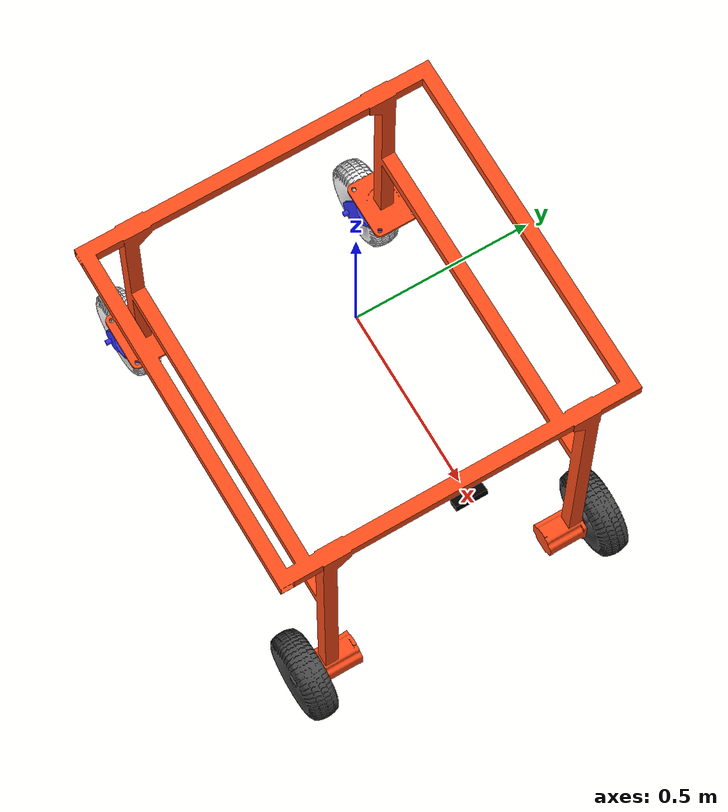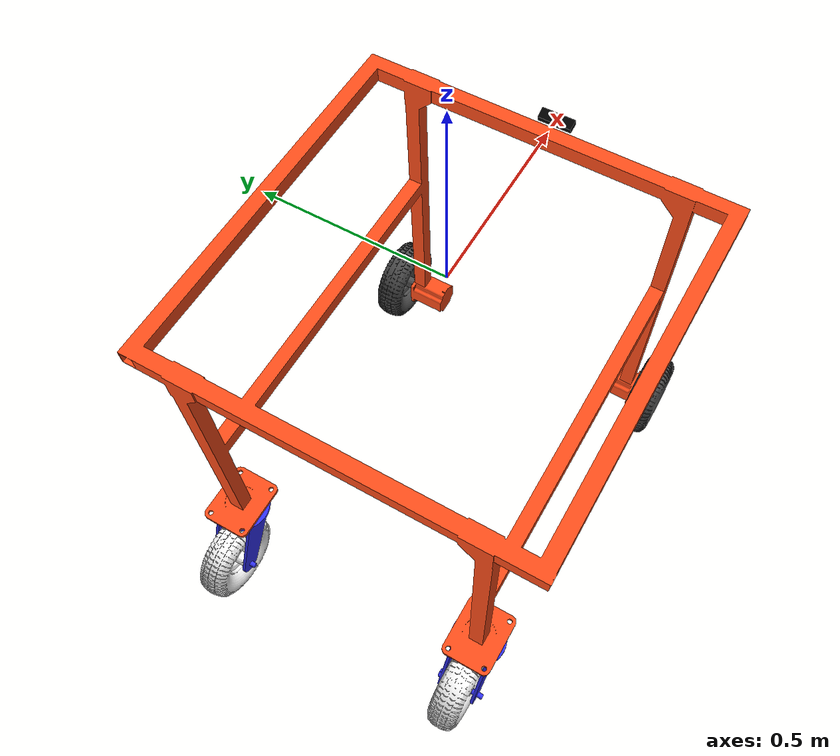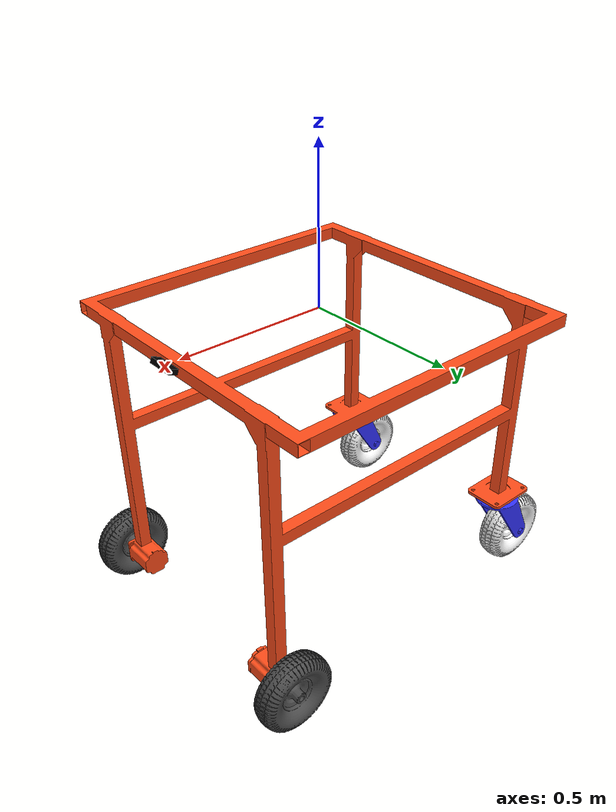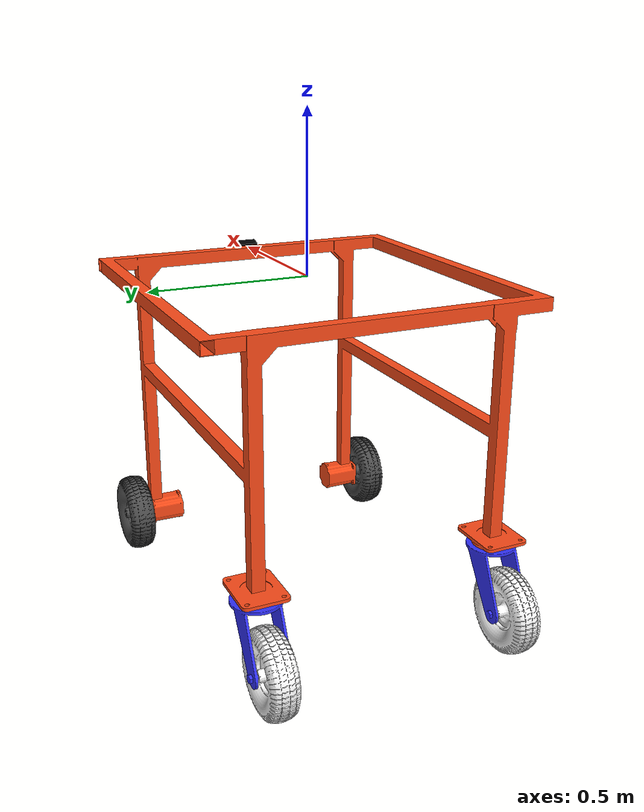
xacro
<?xml version="1.0"?>
<robot xmlns:xacro="http://www.ros.org/wiki/xacro"  name="agri_robot">

  <xacro:include filename="robot_core.xacro"/>
  <xacro:include filename="ros2_control.xacro"/>
  <xacro:include filename="camera_control.xacro"/>
  <xacro:include filename="imu_sensor.xacro"/>

</robot>

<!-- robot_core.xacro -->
<robot xmlns:xacro="http://www.ros.org/wiki/xacro" >

  <material name="black">
    <color rgba="0 0 0 1" />
  </material>

  <material name="gray">
    <color rgba="0.3 0.3 0.3 1" />
  </material>

  <material name="white">
    <color rgba="1 1 1 1" />
  </material>

  <material name="orange">
    <color rgba="1 0.3 0.1 1" />
  </material>

  <material name="blue">
    <color rgba="0.2 0.2 1 1" />
  </material>

  <!--BASE LINK-->

  <link name="base_link">
    <inertial>
      <origin
        xyz="0.046234 -0.00096018 -0.47057"
        rpy="0 0 0" />
      <mass
        value="11.59" />
      <inertia
        ixx="2.7487"
        ixy="0.000"
        ixz="0.21609"
        iyy="7.7539"
        iyz="0.000"
        izz="9.135" />
    </inertial>
    <visual>
      <origin
        xyz="0 0 0"
        rpy="0 0 0" />
      <geometry>
        <mesh
          filename="package://agri_robot_description/meshes/base_link.STL" />
      </geometry>
      <material name="orange"/>
    </visual>
    <collision>
      <origin
        xyz="0 0 0"
        rpy="0 0 0" />
      <geometry>
        <mesh
          filename="package://agri_robot_description/meshes/base_link.STL" />
      </geometry>
    </collision>
  </link>

  <gazebo reference="base_link">
    <material>Gazebo/Orange</material>
  </gazebo>

  <!--LEFT WHEEL LINK-->

  <link
    name="Left_wheel">
    <inertial>
      <origin
        xyz="0.000061067 -0.0010099 0.045157"
        rpy="0 0 0" />
      <mass
        value="1.0" />
      <inertia
        ixx="0.037507"
        ixy="0.00024657"
        ixz="-0.00042617"
        iyy="0.036946"
        iyz="0.0016924"
        izz="0.065317" />
    </inertial>
    <visual>
      <origin
        xyz="0 0 0"
        rpy="0 0 0" />
      <geometry>
        <mesh
          filename="package://agri_robot_description/meshes/Left_wheel.STL" />
      </geometry>
      <material name="gray"/>
    </visual>
    <collision>
      <origin
        xyz="0 0 0"
        rpy="0 0 0" />
      <geometry>
        <mesh
          filename="package://agri_robot_description/meshes/Left_wheel.STL" />
      </geometry>
    </collision>
  </link>

  <gazebo reference="Left_wheel">
    <material>Gazebo/Gray</material>
    <mu1 value="0.4"/>
    <mu2 value="0.4"/>
  </gazebo>

  <joint
    name="Left_wheel_joint"
    type="continuous">
    <origin
      xyz="0.50046 0.40877 -0.92806"
      rpy="-1.5708 0 0" />
    <parent
      link="base_link" />
    <child
      link="Left_wheel" />
    <axis
      xyz="0 0 1" />
    <limit
      effort="100"
      velocity="100" />
    <dynamics
      damping="0.1"
      friction="0.1" />
  </joint>

  <!--RIGHT WHEEL LINK-->

  <link
    name="Right_wheel">
    <inertial>
      <origin
        xyz="-0.000061067 -0.0010099 0.045157"
        rpy="0 0 0" />
      <mass
        value="1.0" />
      <inertia
        ixx="0.037507"
        ixy="0.00024657"
        ixz="-0.00042617"
        iyy="0.036946"
        iyz="0.0016924"
        izz="0.065317" />
    </inertial>
    <visual>
      <origin
        xyz="0 0 0"
        rpy="0 0 0" />
      <geometry>
        <mesh
          filename="package://agri_robot_description/meshes/Right_wheel.STL" />
      </geometry>
      <material name="gray"/>
    </visual>
    <collision>
      <origin
        xyz="0 0 0"
        rpy="0 0 0" />
      <geometry>
        <mesh
          filename="package://agri_robot_description/meshes/Right_wheel.STL" />
      </geometry>
    </collision>
  </link>

  <gazebo reference="Right_wheel">
    <material>Gazebo/Gray</material>
    <mu1 value="0.4"/>
    <mu2 value="0.4"/>
  </gazebo>

  <joint
    name="Right_wheel_joint"
    type="continuous">
    <origin
      xyz="0.50046 -0.4997 -0.92806"
      rpy="1.5708 0 3.1416" />
    <parent
      link="base_link" />
    <child
      link="Right_wheel" />
    <axis
      xyz="0 0 1" />
    <limit
      effort="100"
      velocity="100" />
    <dynamics
      damping="0.1"
      friction="0.1" />
  </joint>

  <!--BASE CASTER LEFT LINK-->

  <link
    name="Base_caster_left">
    <inertial>
      <origin
        xyz="-0.032832 -0.00018128 0.056902"
        rpy="0 0 0" />
      <mass
        value="0.45" />
      <inertia
        ixx="0.025915"
        ixy="0.00044677"
        ixz="0.0087669"
        iyy="0.025098"
        iyz="0.0047946"
        izz="0.018083" />
    </inertial>
    <visual>
      <origin
        xyz="0 0 0"
        rpy="0 0 0" />
      <geometry>
        <mesh
          filename="package://agri_robot_description/meshes/Base_caster_left.STL" />
      </geometry>
      <material name="blue"/>
    </visual>
    <collision>
      <origin
        xyz="0 0 0"
        rpy="0 0 0" />
      <geometry>
        <mesh
          filename="package://agri_robot_description/meshes/Base_caster_left.STL" />
      </geometry>
    </collision>
  </link>

  <gazebo reference="Base_caster_left">
    <material>Gazebo/Blue</material>
    <mu1 value="0.2"/>
    <mu2 value="0.2"/>
  </gazebo>

  <joint
    name="Base_caster_left_joint"
    type="continuous">
    <origin
      xyz="-0.5 0.38 -0.758"
      rpy="-3.1416 0 0" />
    <parent
      link="base_link" />
    <child
      link="Base_caster_left" />
    <axis
      xyz="0 0 1" />
    <limit
      effort="100"
      velocity="100" />
    <dynamics
      damping="0.1"
      friction="0.1" />
  </joint>

  <!--CASTER WHEEL LEFT LINK-->

  <link
    name="Caster_wheel_left">
    <inertial>
      <origin
        xyz="-0.00030285 0.0010085 0.0076161"
        rpy="0 0 0" />
      <mass
        value="1.0" />
      <inertia
        ixx="0.037507"
        ixy="0.00024657"
        ixz="-0.00042617"
        iyy="0.036946"
        iyz="0.0016924"
        izz="0.065317" />
    </inertial>
    <visual>
      <origin
        xyz="0 0 0"
        rpy="0 0 0" />
      <geometry>
        <mesh
          filename="package://agri_robot_description/meshes/Caster_wheel_left.STL" />
      </geometry>
      <material name="white"/>
    </visual>
    <collision>
      <origin
        xyz="0 0 0"
        rpy="0 0 0" />
      <geometry>
        <mesh
          filename="package://agri_robot_description/meshes/Caster_wheel_left.STL" />
      </geometry>
    </collision>
  </link>

  <gazebo reference="Caster_wheel_left">
    <material>Gazebo/White</material>
    <mu1 value="0.4"/>
    <mu2 value="0.4"/>
  </gazebo>

  <joint
    name="Caster_wheel_left_joint"
    type="continuous">
    <origin
      xyz="-0.09675 0.0072514 0.17"
      rpy="1.5708 0 0" />
    <parent
      link="Base_caster_left" />
    <child
      link="Caster_wheel_left" />
    <axis
      xyz="0 0 1" />
    <limit
      effort="100"
      velocity="100" />
    <dynamics
      damping="0.1"
      friction="0.1" />
  </joint>

  <!--BASE CASTER RIGHT LINK-->

  <link
    name="Base_caster_right">
    <inertial>
      <origin
        xyz="-0.032832 -0.00018128 0.056902"
        rpy="0 0 0" />
      <mass
        value="0.45" />
      <inertia
        ixx="0.025915"
        ixy="0.00044677"
        ixz="0.0087669"
        iyy="0.025098"
        iyz="0.0047946"
        izz="0.018083" />
    </inertial>
    <visual>
      <origin
        xyz="0 0 0"
        rpy="0 0 0" />
      <geometry>
        <mesh
          filename="package://agri_robot_description/meshes/Base_caster_right.STL" />
      </geometry>
      <material name="blue"/>
    </visual>
    <collision>
      <origin
        xyz="0 0 0"
        rpy="0 0 0" />
      <geometry>
        <mesh
          filename="package://agri_robot_description/meshes/Base_caster_right.STL" />
      </geometry>
    </collision>
  </link>

  <gazebo reference="Base_caster_right">
    <material>Gazebo/Blue</material>
    <mu1 value="0.2"/>
    <mu2 value="0.2"/>
  </gazebo>

  <joint
    name="Base_caster_right_joint"
    type="continuous">
    <origin
      xyz="-0.5 -0.38 -0.758"
      rpy="-3.1416 0 0" />
    <parent
      link="base_link" />
    <child
      link="Base_caster_right" />
    <axis
      xyz="0 0 1" />
    <limit
      effort="100"
      velocity="100" />
    <dynamics
      damping="0.1"
      friction="0.1" />
  </joint>

  <!--CASTER WHEEL RIGHT LINK-->

  <link
    name="Caster_wheel_right">
    <inertial>
      <origin
        xyz="0.00030285 -0.0010085 0.0076161"
        rpy="0 0 0" />
      <mass
        value="1.0" />
      <inertia
        ixx="0.037507"
        ixy="0.00024657"
        ixz="-0.00042617"
        iyy="0.036946"
        iyz="0.0016924"
        izz="0.065317" />
    </inertial>
    <visual>
      <origin
        xyz="0 0 0"
        rpy="0 0 0" />
      <geometry>
        <mesh
          filename="package://agri_robot_description/meshes/Caster_wheel_right.STL" />
      </geometry>
      <material name="white" />
    </visual>
    <collision>
      <origin
        xyz="0 0 0"
        rpy="0 0 0" />
      <geometry>
        <mesh
          filename="package://agri_robot_description/meshes/Caster_wheel_right.STL" />
      </geometry>
    </collision>
  </link>

  <gazebo reference="Caster_wheel_right">
    <material>Gazebo/White</material>
    <mu1 value="0.4"/>
    <mu2 value="0.4"/>
  </gazebo>

  <joint
    name="Caster_wheel_right_joint"
    type="continuous">
    <origin
      xyz="-0.09675 0.0072514 0.17"
      rpy="-1.5708 0 3.1416" />
    <parent
      link="Base_caster_right" />
    <child
      link="Caster_wheel_right" />
    <axis
      xyz="0 0 1" />
    <limit
      effort="100"
      velocity="100" />
    <dynamics
      damping="0.1"
      friction="0.1" />
  </joint>
</robot>

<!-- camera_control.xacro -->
<robot xmlns:xacro="http://www.ros.org/wiki/xacro" >

    <joint name="camera_joint" type="fixed">
        <parent link="base_link"/>
        <child link="camera_link"/>
        <origin xyz="0.548 0 0" rpy="0 ${7*(pi/18)} 0"/>
    </joint>

    <link name="camera_link">
        <visual>
            <geometry>
                <box size="0.0175 0.091 0.028"/>
            </geometry>
            <material name="black"/>
        </visual>
    </link>

    <!--Link for RGB camera-->

    <joint name="camera_optical_joint" type="fixed">
        <parent link="camera_link"/>
        <child link="camera_link_optical"/>
        <origin xyz="0 0 0" rpy="${-pi/2} 0 ${-pi/2}"/>
    </joint>

    <link name="camera_link_optical"></link>

    <gazebo reference="camera_link">
        <material>Gazebo/Black</material>

        <!--Sensor camera-->
        <sensor name="rgb_camera" type="camera">
            <pose> 0 0 0 0 0 0 </pose>
            <visualize>true</visualize>
            <update_rate>10</update_rate>
            <camera>
                <horizontal_fov>1.089</horizontal_fov>
                <image>
                    <format>R8G8B8</format>
                    <width>800</width>
                    <height>600</height>
                </image>
                <clip>
                    <near>0.05</near>
                    <far>8.0</far>
                </clip>
            </camera>
            <plugin name="rgb_controller" filename="libgazebo_ros_camera.so">
                <frame_name>camera_link_optical</frame_name>
            </plugin>
        </sensor>
    </gazebo>

</robot>

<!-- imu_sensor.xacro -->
<robot xmlns:xacro="http://www.ros.org/wiki/xacro" >
    <link name="imu_link"/>
    <joint
        name="imu_joint"
        type="fixed">
        <origin
            xyz="0.0 0 0.0"
            rpy="0 0 0" />
        <parent
            link="base_link" />
        <child
            link="imu_link" />
        <axis
            xyz="1 0 0" />
    </joint>

    <gazebo reference="imu_link">
        <gravity>true</gravity>
        <sensor name="imu_sensor" type="imu">
            <always_on>true</always_on>
            <update_rate>100</update_rate>
            <visualize>true</visualize>
            <topic>imu_data</topic>
            <plugin filename="libgazebo_ros_imu_sensor.so" name="imu_plugin">
                <topicName>imu_data</topicName>
                <bodyName>imu_link</bodyName>
                <updateRateHZ>10.0</updateRateHZ>
                <gaussianNoise>0.005</gaussianNoise>
                <xyzOffset>0 0 0</xyzOffset>
                <rpyOffset>0 0 0</rpyOffset>
                <frameName>imu_link</frameName>
                <initialOrientationAsReference>true</initialOrientationAsReference>
            </plugin>
            <pose>0 0 0 0 0 0</pose>
        </sensor>
  </gazebo>

</robot>
